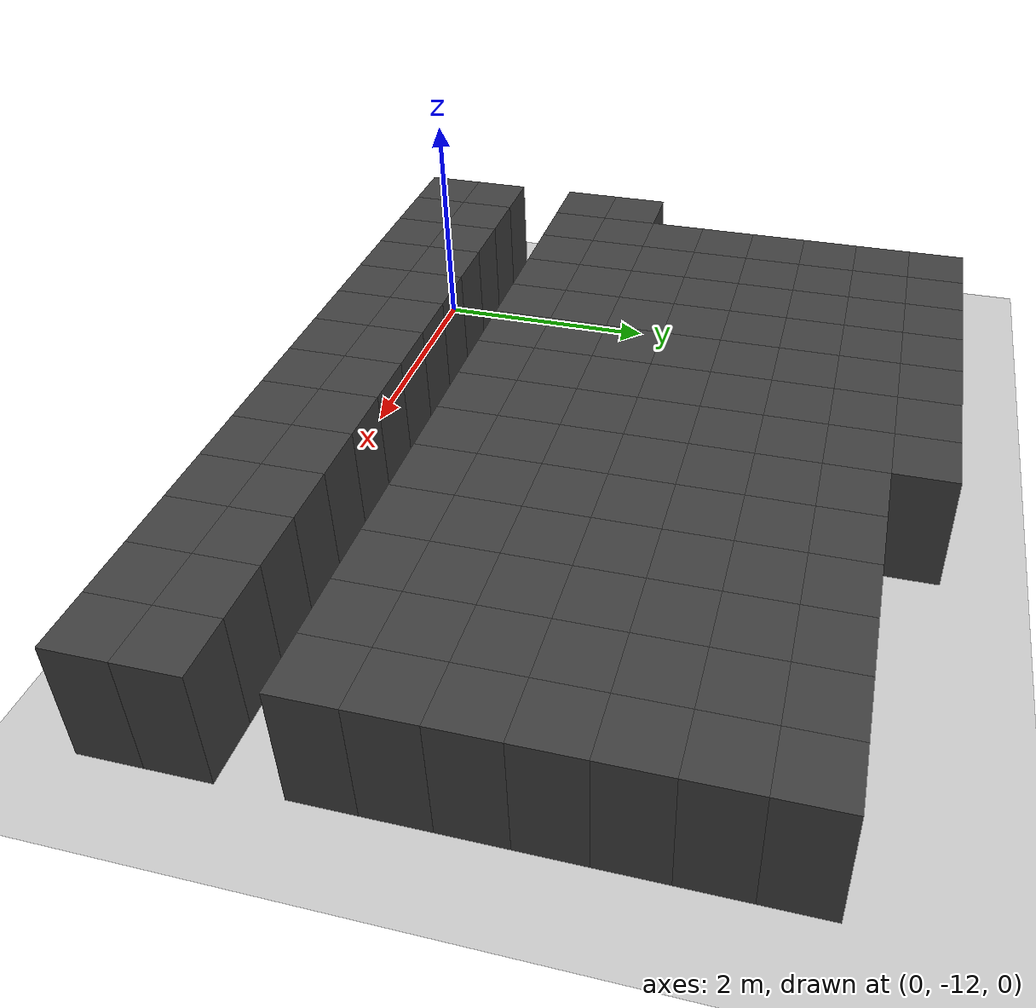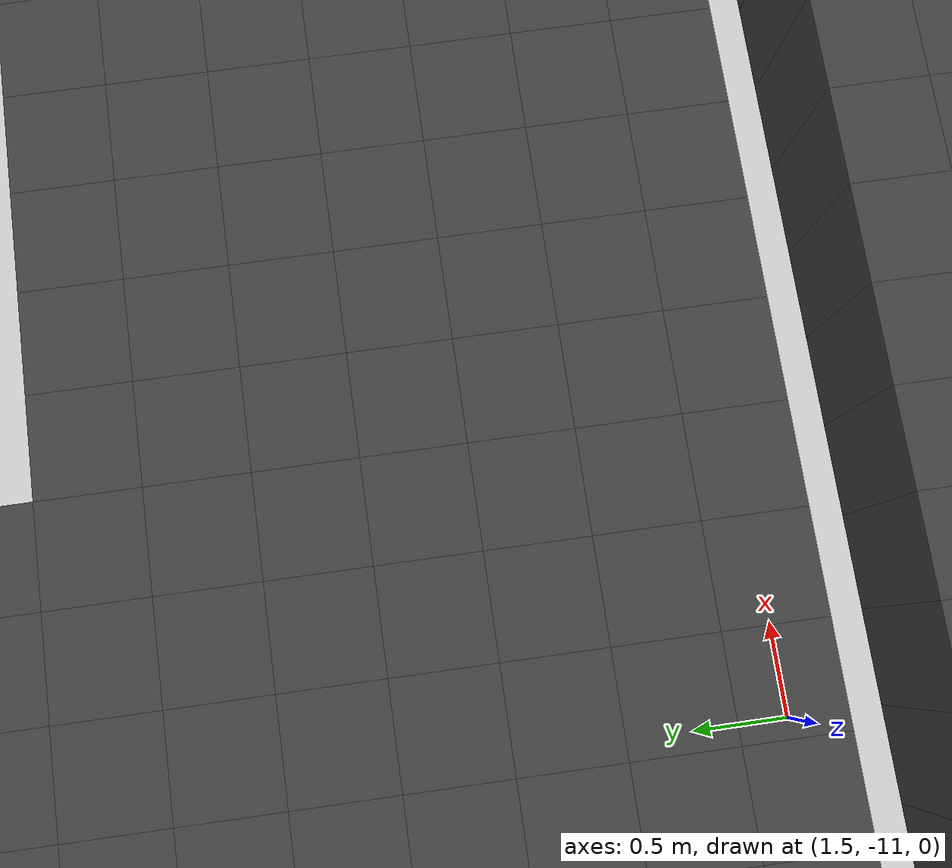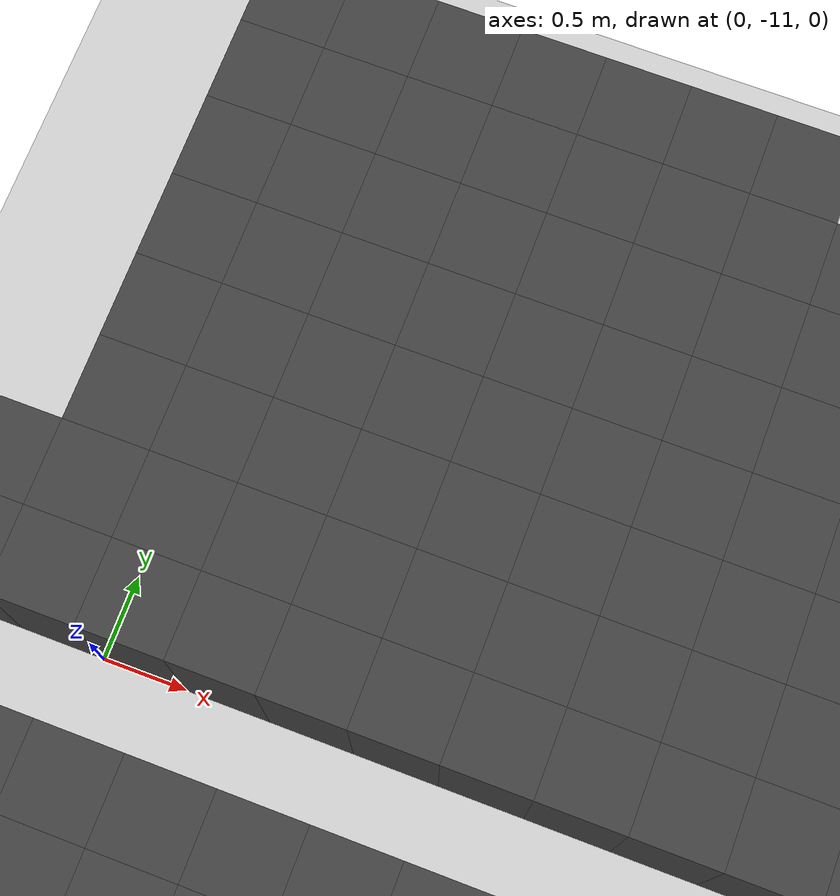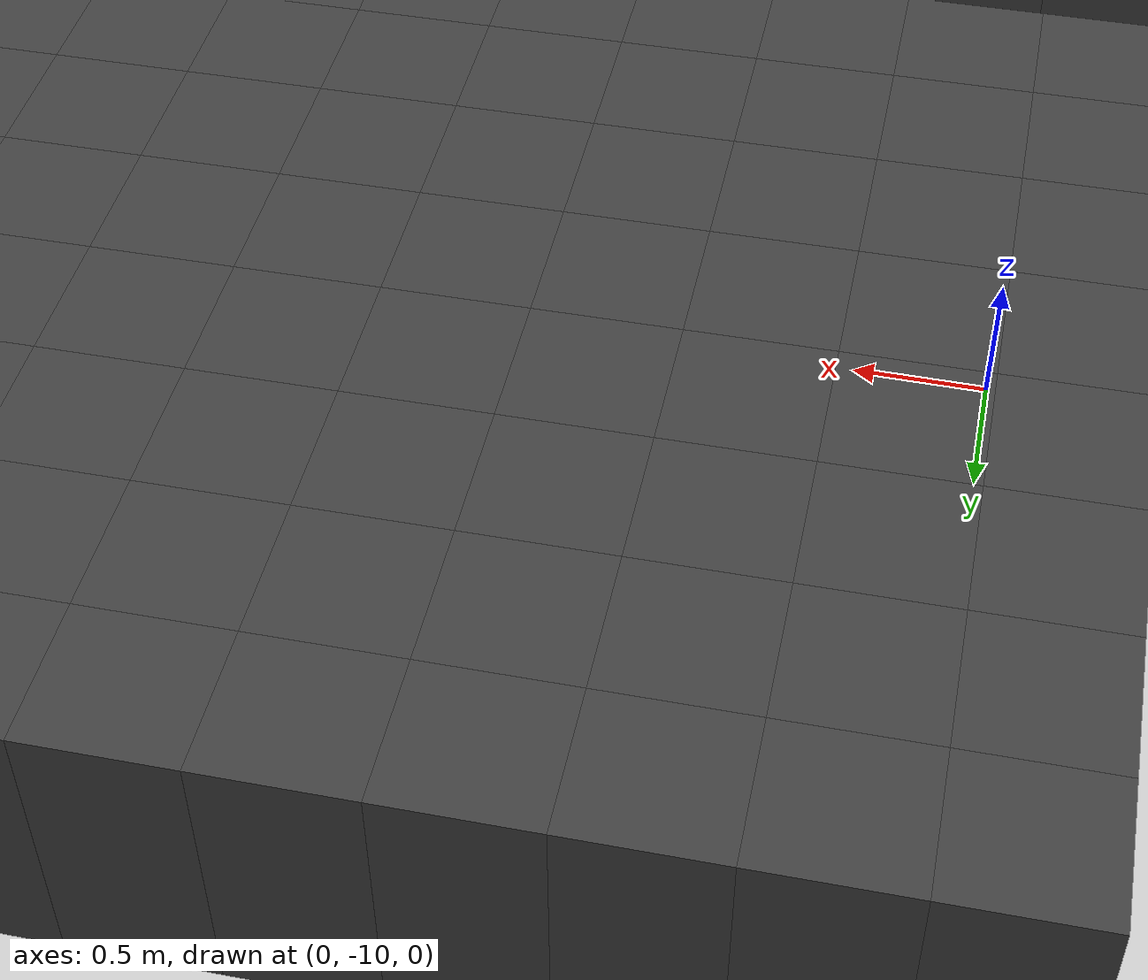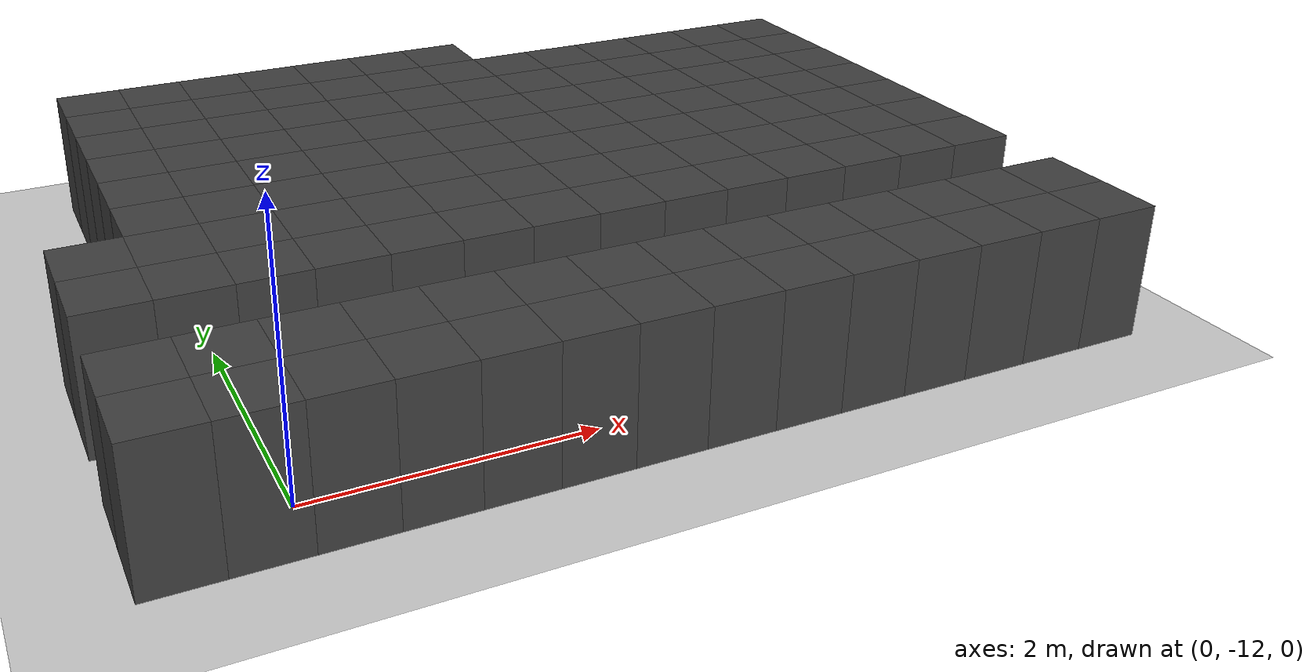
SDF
<sdf version="1.7">
 <world name="map_11515">
  <model name="ground_plane">
   <static>true</static>
   <link name="link">
    <collision name="collision">
     <geometry><plane><normal>0 0 1</normal><size>200 200</size></plane></geometry>
    </collision>
    <visual name="visual">
     <geometry><plane><normal>0 0 1</normal><size>200 200</size></plane></geometry>
     <material><ambient>0.8 0.8 0.8 1</ambient><diffuse>0.8 0.8 0.8 1</diffuse></material>
    </visual>
   </link>
  </model>
  <model name="maze_environment">
   <static>true</static>
   <link name="wall_1722">
    <pose>-0.250 -7.250 0.500 0 0 0</pose>
    <collision name="col"><geometry><box><size>0.5 0.5 1.0</size></box></geometry></collision>
    <visual name="vis">
     <geometry><box><size>0.5 0.5 1.0</size></box></geometry>
     <material><ambient>0.15 0.15 0.15 1</ambient><diffuse>0.25 0.25 0.25 1</diffuse></material>
    </visual>
   </link>
   <link name="wall_1723">
    <pose>0.250 -7.250 0.500 0 0 0</pose>
    <collision name="col"><geometry><box><size>0.5 0.5 1.0</size></box></geometry></collision>
    <visual name="vis">
     <geometry><box><size>0.5 0.5 1.0</size></box></geometry>
     <material><ambient>0.15 0.15 0.15 1</ambient><diffuse>0.25 0.25 0.25 1</diffuse></material>
    </visual>
   </link>
   <link name="wall_1724">
    <pose>0.750 -7.250 0.500 0 0 0</pose>
    <collision name="col"><geometry><box><size>0.5 0.5 1.0</size></box></geometry></collision>
    <visual name="vis">
     <geometry><box><size>0.5 0.5 1.0</size></box></geometry>
     <material><ambient>0.15 0.15 0.15 1</ambient><diffuse>0.25 0.25 0.25 1</diffuse></material>
    </visual>
   </link>
   <link name="wall_1725">
    <pose>1.250 -7.250 0.500 0 0 0</pose>
    <collision name="col"><geometry><box><size>0.5 0.5 1.0</size></box></geometry></collision>
    <visual name="vis">
     <geometry><box><size>0.5 0.5 1.0</size></box></geometry>
     <material><ambient>0.15 0.15 0.15 1</ambient><diffuse>0.25 0.25 0.25 1</diffuse></material>
    </visual>
   </link>
   <link name="wall_1726">
    <pose>1.750 -7.250 0.500 0 0 0</pose>
    <collision name="col"><geometry><box><size>0.5 0.5 1.0</size></box></geometry></collision>
    <visual name="vis">
     <geometry><box><size>0.5 0.5 1.0</size></box></geometry>
     <material><ambient>0.15 0.15 0.15 1</ambient><diffuse>0.25 0.25 0.25 1</diffuse></material>
    </visual>
   </link>
   <link name="wall_1727">
    <pose>2.250 -7.250 0.500 0 0 0</pose>
    <collision name="col"><geometry><box><size>0.5 0.5 1.0</size></box></geometry></collision>
    <visual name="vis">
     <geometry><box><size>0.5 0.5 1.0</size></box></geometry>
     <material><ambient>0.15 0.15 0.15 1</ambient><diffuse>0.25 0.25 0.25 1</diffuse></material>
    </visual>
   </link>
   <link name="wall_1728">
    <pose>2.750 -7.250 0.500 0 0 0</pose>
    <collision name="col"><geometry><box><size>0.5 0.5 1.0</size></box></geometry></collision>
    <visual name="vis">
     <geometry><box><size>0.5 0.5 1.0</size></box></geometry>
     <material><ambient>0.15 0.15 0.15 1</ambient><diffuse>0.25 0.25 0.25 1</diffuse></material>
    </visual>
   </link>
   <link name="wall_1771">
    <pose>-0.250 -7.750 0.500 0 0 0</pose>
    <collision name="col"><geometry><box><size>0.5 0.5 1.0</size></box></geometry></collision>
    <visual name="vis">
     <geometry><box><size>0.5 0.5 1.0</size></box></geometry>
     <material><ambient>0.15 0.15 0.15 1</ambient><diffuse>0.25 0.25 0.25 1</diffuse></material>
    </visual>
   </link>
   <link name="wall_1772">
    <pose>0.250 -7.750 0.500 0 0 0</pose>
    <collision name="col"><geometry><box><size>0.5 0.5 1.0</size></box></geometry></collision>
    <visual name="vis">
     <geometry><box><size>0.5 0.5 1.0</size></box></geometry>
     <material><ambient>0.15 0.15 0.15 1</ambient><diffuse>0.25 0.25 0.25 1</diffuse></material>
    </visual>
   </link>
   <link name="wall_1773">
    <pose>0.750 -7.750 0.500 0 0 0</pose>
    <collision name="col"><geometry><box><size>0.5 0.5 1.0</size></box></geometry></collision>
    <visual name="vis">
     <geometry><box><size>0.5 0.5 1.0</size></box></geometry>
     <material><ambient>0.15 0.15 0.15 1</ambient><diffuse>0.25 0.25 0.25 1</diffuse></material>
    </visual>
   </link>
   <link name="wall_1774">
    <pose>1.250 -7.750 0.500 0 0 0</pose>
    <collision name="col"><geometry><box><size>0.5 0.5 1.0</size></box></geometry></collision>
    <visual name="vis">
     <geometry><box><size>0.5 0.5 1.0</size></box></geometry>
     <material><ambient>0.15 0.15 0.15 1</ambient><diffuse>0.25 0.25 0.25 1</diffuse></material>
    </visual>
   </link>
   <link name="wall_1775">
    <pose>1.750 -7.750 0.500 0 0 0</pose>
    <collision name="col"><geometry><box><size>0.5 0.5 1.0</size></box></geometry></collision>
    <visual name="vis">
     <geometry><box><size>0.5 0.5 1.0</size></box></geometry>
     <material><ambient>0.15 0.15 0.15 1</ambient><diffuse>0.25 0.25 0.25 1</diffuse></material>
    </visual>
   </link>
   <link name="wall_1776">
    <pose>2.250 -7.750 0.500 0 0 0</pose>
    <collision name="col"><geometry><box><size>0.5 0.5 1.0</size></box></geometry></collision>
    <visual name="vis">
     <geometry><box><size>0.5 0.5 1.0</size></box></geometry>
     <material><ambient>0.15 0.15 0.15 1</ambient><diffuse>0.25 0.25 0.25 1</diffuse></material>
    </visual>
   </link>
   <link name="wall_1777">
    <pose>2.750 -7.750 0.500 0 0 0</pose>
    <collision name="col"><geometry><box><size>0.5 0.5 1.0</size></box></geometry></collision>
    <visual name="vis">
     <geometry><box><size>0.5 0.5 1.0</size></box></geometry>
     <material><ambient>0.15 0.15 0.15 1</ambient><diffuse>0.25 0.25 0.25 1</diffuse></material>
    </visual>
   </link>
   <link name="wall_1778">
    <pose>3.250 -7.750 0.500 0 0 0</pose>
    <collision name="col"><geometry><box><size>0.5 0.5 1.0</size></box></geometry></collision>
    <visual name="vis">
     <geometry><box><size>0.5 0.5 1.0</size></box></geometry>
     <material><ambient>0.15 0.15 0.15 1</ambient><diffuse>0.25 0.25 0.25 1</diffuse></material>
    </visual>
   </link>
   <link name="wall_1779">
    <pose>3.750 -7.750 0.500 0 0 0</pose>
    <collision name="col"><geometry><box><size>0.5 0.5 1.0</size></box></geometry></collision>
    <visual name="vis">
     <geometry><box><size>0.5 0.5 1.0</size></box></geometry>
     <material><ambient>0.15 0.15 0.15 1</ambient><diffuse>0.25 0.25 0.25 1</diffuse></material>
    </visual>
   </link>
   <link name="wall_1780">
    <pose>4.250 -7.750 0.500 0 0 0</pose>
    <collision name="col"><geometry><box><size>0.5 0.5 1.0</size></box></geometry></collision>
    <visual name="vis">
     <geometry><box><size>0.5 0.5 1.0</size></box></geometry>
     <material><ambient>0.15 0.15 0.15 1</ambient><diffuse>0.25 0.25 0.25 1</diffuse></material>
    </visual>
   </link>
   <link name="wall_1781">
    <pose>4.750 -7.750 0.500 0 0 0</pose>
    <collision name="col"><geometry><box><size>0.5 0.5 1.0</size></box></geometry></collision>
    <visual name="vis">
     <geometry><box><size>0.5 0.5 1.0</size></box></geometry>
     <material><ambient>0.15 0.15 0.15 1</ambient><diffuse>0.25 0.25 0.25 1</diffuse></material>
    </visual>
   </link>
   <link name="wall_1782">
    <pose>5.250 -7.750 0.500 0 0 0</pose>
    <collision name="col"><geometry><box><size>0.5 0.5 1.0</size></box></geometry></collision>
    <visual name="vis">
     <geometry><box><size>0.5 0.5 1.0</size></box></geometry>
     <material><ambient>0.15 0.15 0.15 1</ambient><diffuse>0.25 0.25 0.25 1</diffuse></material>
    </visual>
   </link>
   <link name="wall_1783">
    <pose>5.750 -7.750 0.500 0 0 0</pose>
    <collision name="col"><geometry><box><size>0.5 0.5 1.0</size></box></geometry></collision>
    <visual name="vis">
     <geometry><box><size>0.5 0.5 1.0</size></box></geometry>
     <material><ambient>0.15 0.15 0.15 1</ambient><diffuse>0.25 0.25 0.25 1</diffuse></material>
    </visual>
   </link>
   <link name="wall_1820">
    <pose>-0.250 -8.250 0.500 0 0 0</pose>
    <collision name="col"><geometry><box><size>0.5 0.5 1.0</size></box></geometry></collision>
    <visual name="vis">
     <geometry><box><size>0.5 0.5 1.0</size></box></geometry>
     <material><ambient>0.15 0.15 0.15 1</ambient><diffuse>0.25 0.25 0.25 1</diffuse></material>
    </visual>
   </link>
   <link name="wall_1821">
    <pose>0.250 -8.250 0.500 0 0 0</pose>
    <collision name="col"><geometry><box><size>0.5 0.5 1.0</size></box></geometry></collision>
    <visual name="vis">
     <geometry><box><size>0.5 0.5 1.0</size></box></geometry>
     <material><ambient>0.15 0.15 0.15 1</ambient><diffuse>0.25 0.25 0.25 1</diffuse></material>
    </visual>
   </link>
   <link name="wall_1822">
    <pose>0.750 -8.250 0.500 0 0 0</pose>
    <collision name="col"><geometry><box><size>0.5 0.5 1.0</size></box></geometry></collision>
    <visual name="vis">
     <geometry><box><size>0.5 0.5 1.0</size></box></geometry>
     <material><ambient>0.15 0.15 0.15 1</ambient><diffuse>0.25 0.25 0.25 1</diffuse></material>
    </visual>
   </link>
   <link name="wall_1823">
    <pose>1.250 -8.250 0.500 0 0 0</pose>
    <collision name="col"><geometry><box><size>0.5 0.5 1.0</size></box></geometry></collision>
    <visual name="vis">
     <geometry><box><size>0.5 0.5 1.0</size></box></geometry>
     <material><ambient>0.15 0.15 0.15 1</ambient><diffuse>0.25 0.25 0.25 1</diffuse></material>
    </visual>
   </link>
   <link name="wall_1824">
    <pose>1.750 -8.250 0.500 0 0 0</pose>
    <collision name="col"><geometry><box><size>0.5 0.5 1.0</size></box></geometry></collision>
    <visual name="vis">
     <geometry><box><size>0.5 0.5 1.0</size></box></geometry>
     <material><ambient>0.15 0.15 0.15 1</ambient><diffuse>0.25 0.25 0.25 1</diffuse></material>
    </visual>
   </link>
   <link name="wall_1825">
    <pose>2.250 -8.250 0.500 0 0 0</pose>
    <collision name="col"><geometry><box><size>0.5 0.5 1.0</size></box></geometry></collision>
    <visual name="vis">
     <geometry><box><size>0.5 0.5 1.0</size></box></geometry>
     <material><ambient>0.15 0.15 0.15 1</ambient><diffuse>0.25 0.25 0.25 1</diffuse></material>
    </visual>
   </link>
   <link name="wall_1826">
    <pose>2.750 -8.250 0.500 0 0 0</pose>
    <collision name="col"><geometry><box><size>0.5 0.5 1.0</size></box></geometry></collision>
    <visual name="vis">
     <geometry><box><size>0.5 0.5 1.0</size></box></geometry>
     <material><ambient>0.15 0.15 0.15 1</ambient><diffuse>0.25 0.25 0.25 1</diffuse></material>
    </visual>
   </link>
   <link name="wall_1827">
    <pose>3.250 -8.250 0.500 0 0 0</pose>
    <collision name="col"><geometry><box><size>0.5 0.5 1.0</size></box></geometry></collision>
    <visual name="vis">
     <geometry><box><size>0.5 0.5 1.0</size></box></geometry>
     <material><ambient>0.15 0.15 0.15 1</ambient><diffuse>0.25 0.25 0.25 1</diffuse></material>
    </visual>
   </link>
   <link name="wall_1828">
    <pose>3.750 -8.250 0.500 0 0 0</pose>
    <collision name="col"><geometry><box><size>0.5 0.5 1.0</size></box></geometry></collision>
    <visual name="vis">
     <geometry><box><size>0.5 0.5 1.0</size></box></geometry>
     <material><ambient>0.15 0.15 0.15 1</ambient><diffuse>0.25 0.25 0.25 1</diffuse></material>
    </visual>
   </link>
   <link name="wall_1829">
    <pose>4.250 -8.250 0.500 0 0 0</pose>
    <collision name="col"><geometry><box><size>0.5 0.5 1.0</size></box></geometry></collision>
    <visual name="vis">
     <geometry><box><size>0.5 0.5 1.0</size></box></geometry>
     <material><ambient>0.15 0.15 0.15 1</ambient><diffuse>0.25 0.25 0.25 1</diffuse></material>
    </visual>
   </link>
   <link name="wall_1830">
    <pose>4.750 -8.250 0.500 0 0 0</pose>
    <collision name="col"><geometry><box><size>0.5 0.5 1.0</size></box></geometry></collision>
    <visual name="vis">
     <geometry><box><size>0.5 0.5 1.0</size></box></geometry>
     <material><ambient>0.15 0.15 0.15 1</ambient><diffuse>0.25 0.25 0.25 1</diffuse></material>
    </visual>
   </link>
   <link name="wall_1831">
    <pose>5.250 -8.250 0.500 0 0 0</pose>
    <collision name="col"><geometry><box><size>0.5 0.5 1.0</size></box></geometry></collision>
    <visual name="vis">
     <geometry><box><size>0.5 0.5 1.0</size></box></geometry>
     <material><ambient>0.15 0.15 0.15 1</ambient><diffuse>0.25 0.25 0.25 1</diffuse></material>
    </visual>
   </link>
   <link name="wall_1832">
    <pose>5.750 -8.250 0.500 0 0 0</pose>
    <collision name="col"><geometry><box><size>0.5 0.5 1.0</size></box></geometry></collision>
    <visual name="vis">
     <geometry><box><size>0.5 0.5 1.0</size></box></geometry>
     <material><ambient>0.15 0.15 0.15 1</ambient><diffuse>0.25 0.25 0.25 1</diffuse></material>
    </visual>
   </link>
   <link name="wall_1863">
    <pose>-0.250 -8.750 0.500 0 0 0</pose>
    <collision name="col"><geometry><box><size>0.5 0.5 1.0</size></box></geometry></collision>
    <visual name="vis">
     <geometry><box><size>0.5 0.5 1.0</size></box></geometry>
     <material><ambient>0.15 0.15 0.15 1</ambient><diffuse>0.25 0.25 0.25 1</diffuse></material>
    </visual>
   </link>
   <link name="wall_1864">
    <pose>0.250 -8.750 0.500 0 0 0</pose>
    <collision name="col"><geometry><box><size>0.5 0.5 1.0</size></box></geometry></collision>
    <visual name="vis">
     <geometry><box><size>0.5 0.5 1.0</size></box></geometry>
     <material><ambient>0.15 0.15 0.15 1</ambient><diffuse>0.25 0.25 0.25 1</diffuse></material>
    </visual>
   </link>
   <link name="wall_1865">
    <pose>0.750 -8.750 0.500 0 0 0</pose>
    <collision name="col"><geometry><box><size>0.5 0.5 1.0</size></box></geometry></collision>
    <visual name="vis">
     <geometry><box><size>0.5 0.5 1.0</size></box></geometry>
     <material><ambient>0.15 0.15 0.15 1</ambient><diffuse>0.25 0.25 0.25 1</diffuse></material>
    </visual>
   </link>
   <link name="wall_1866">
    <pose>1.250 -8.750 0.500 0 0 0</pose>
    <collision name="col"><geometry><box><size>0.5 0.5 1.0</size></box></geometry></collision>
    <visual name="vis">
     <geometry><box><size>0.5 0.5 1.0</size></box></geometry>
     <material><ambient>0.15 0.15 0.15 1</ambient><diffuse>0.25 0.25 0.25 1</diffuse></material>
    </visual>
   </link>
   <link name="wall_1867">
    <pose>1.750 -8.750 0.500 0 0 0</pose>
    <collision name="col"><geometry><box><size>0.5 0.5 1.0</size></box></geometry></collision>
    <visual name="vis">
     <geometry><box><size>0.5 0.5 1.0</size></box></geometry>
     <material><ambient>0.15 0.15 0.15 1</ambient><diffuse>0.25 0.25 0.25 1</diffuse></material>
    </visual>
   </link>
   <link name="wall_1868">
    <pose>2.250 -8.750 0.500 0 0 0</pose>
    <collision name="col"><geometry><box><size>0.5 0.5 1.0</size></box></geometry></collision>
    <visual name="vis">
     <geometry><box><size>0.5 0.5 1.0</size></box></geometry>
     <material><ambient>0.15 0.15 0.15 1</ambient><diffuse>0.25 0.25 0.25 1</diffuse></material>
    </visual>
   </link>
   <link name="wall_1869">
    <pose>2.750 -8.750 0.500 0 0 0</pose>
    <collision name="col"><geometry><box><size>0.5 0.5 1.0</size></box></geometry></collision>
    <visual name="vis">
     <geometry><box><size>0.5 0.5 1.0</size></box></geometry>
     <material><ambient>0.15 0.15 0.15 1</ambient><diffuse>0.25 0.25 0.25 1</diffuse></material>
    </visual>
   </link>
   <link name="wall_1870">
    <pose>3.250 -8.750 0.500 0 0 0</pose>
    <collision name="col"><geometry><box><size>0.5 0.5 1.0</size></box></geometry></collision>
    <visual name="vis">
     <geometry><box><size>0.5 0.5 1.0</size></box></geometry>
     <material><ambient>0.15 0.15 0.15 1</ambient><diffuse>0.25 0.25 0.25 1</diffuse></material>
    </visual>
   </link>
   <link name="wall_1871">
    <pose>3.750 -8.750 0.500 0 0 0</pose>
    <collision name="col"><geometry><box><size>0.5 0.5 1.0</size></box></geometry></collision>
    <visual name="vis">
     <geometry><box><size>0.5 0.5 1.0</size></box></geometry>
     <material><ambient>0.15 0.15 0.15 1</ambient><diffuse>0.25 0.25 0.25 1</diffuse></material>
    </visual>
   </link>
   <link name="wall_1872">
    <pose>4.250 -8.750 0.500 0 0 0</pose>
    <collision name="col"><geometry><box><size>0.5 0.5 1.0</size></box></geometry></collision>
    <visual name="vis">
     <geometry><box><size>0.5 0.5 1.0</size></box></geometry>
     <material><ambient>0.15 0.15 0.15 1</ambient><diffuse>0.25 0.25 0.25 1</diffuse></material>
    </visual>
   </link>
   <link name="wall_1873">
    <pose>4.750 -8.750 0.500 0 0 0</pose>
    <collision name="col"><geometry><box><size>0.5 0.5 1.0</size></box></geometry></collision>
    <visual name="vis">
     <geometry><box><size>0.5 0.5 1.0</size></box></geometry>
     <material><ambient>0.15 0.15 0.15 1</ambient><diffuse>0.25 0.25 0.25 1</diffuse></material>
    </visual>
   </link>
   <link name="wall_1874">
    <pose>5.250 -8.750 0.500 0 0 0</pose>
    <collision name="col"><geometry><box><size>0.5 0.5 1.0</size></box></geometry></collision>
    <visual name="vis">
     <geometry><box><size>0.5 0.5 1.0</size></box></geometry>
     <material><ambient>0.15 0.15 0.15 1</ambient><diffuse>0.25 0.25 0.25 1</diffuse></material>
    </visual>
   </link>
   <link name="wall_1875">
    <pose>5.750 -8.750 0.500 0 0 0</pose>
    <collision name="col"><geometry><box><size>0.5 0.5 1.0</size></box></geometry></collision>
    <visual name="vis">
     <geometry><box><size>0.5 0.5 1.0</size></box></geometry>
     <material><ambient>0.15 0.15 0.15 1</ambient><diffuse>0.25 0.25 0.25 1</diffuse></material>
    </visual>
   </link>
   <link name="wall_1906">
    <pose>-0.250 -9.250 0.500 0 0 0</pose>
    <collision name="col"><geometry><box><size>0.5 0.5 1.0</size></box></geometry></collision>
    <visual name="vis">
     <geometry><box><size>0.5 0.5 1.0</size></box></geometry>
     <material><ambient>0.15 0.15 0.15 1</ambient><diffuse>0.25 0.25 0.25 1</diffuse></material>
    </visual>
   </link>
   <link name="wall_1907">
    <pose>0.250 -9.250 0.500 0 0 0</pose>
    <collision name="col"><geometry><box><size>0.5 0.5 1.0</size></box></geometry></collision>
    <visual name="vis">
     <geometry><box><size>0.5 0.5 1.0</size></box></geometry>
     <material><ambient>0.15 0.15 0.15 1</ambient><diffuse>0.25 0.25 0.25 1</diffuse></material>
    </visual>
   </link>
   <link name="wall_1908">
    <pose>0.750 -9.250 0.500 0 0 0</pose>
    <collision name="col"><geometry><box><size>0.5 0.5 1.0</size></box></geometry></collision>
    <visual name="vis">
     <geometry><box><size>0.5 0.5 1.0</size></box></geometry>
     <material><ambient>0.15 0.15 0.15 1</ambient><diffuse>0.25 0.25 0.25 1</diffuse></material>
    </visual>
   </link>
   <link name="wall_1909">
    <pose>1.250 -9.250 0.500 0 0 0</pose>
    <collision name="col"><geometry><box><size>0.5 0.5 1.0</size></box></geometry></collision>
    <visual name="vis">
     <geometry><box><size>0.5 0.5 1.0</size></box></geometry>
     <material><ambient>0.15 0.15 0.15 1</ambient><diffuse>0.25 0.25 0.25 1</diffuse></material>
    </visual>
   </link>
   <link name="wall_1910">
    <pose>1.750 -9.250 0.500 0 0 0</pose>
    <collision name="col"><geometry><box><size>0.5 0.5 1.0</size></box></geometry></collision>
    <visual name="vis">
     <geometry><box><size>0.5 0.5 1.0</size></box></geometry>
     <material><ambient>0.15 0.15 0.15 1</ambient><diffuse>0.25 0.25 0.25 1</diffuse></material>
    </visual>
   </link>
   <link name="wall_1911">
    <pose>2.250 -9.250 0.500 0 0 0</pose>
    <collision name="col"><geometry><box><size>0.5 0.5 1.0</size></box></geometry></collision>
    <visual name="vis">
     <geometry><box><size>0.5 0.5 1.0</size></box></geometry>
     <material><ambient>0.15 0.15 0.15 1</ambient><diffuse>0.25 0.25 0.25 1</diffuse></material>
    </visual>
   </link>
   <link name="wall_1912">
    <pose>2.750 -9.250 0.500 0 0 0</pose>
    <collision name="col"><geometry><box><size>0.5 0.5 1.0</size></box></geometry></collision>
    <visual name="vis">
     <geometry><box><size>0.5 0.5 1.0</size></box></geometry>
     <material><ambient>0.15 0.15 0.15 1</ambient><diffuse>0.25 0.25 0.25 1</diffuse></material>
    </visual>
   </link>
   <link name="wall_1913">
    <pose>3.250 -9.250 0.500 0 0 0</pose>
    <collision name="col"><geometry><box><size>0.5 0.5 1.0</size></box></geometry></collision>
    <visual name="vis">
     <geometry><box><size>0.5 0.5 1.0</size></box></geometry>
     <material><ambient>0.15 0.15 0.15 1</ambient><diffuse>0.25 0.25 0.25 1</diffuse></material>
    </visual>
   </link>
   <link name="wall_1914">
    <pose>3.750 -9.250 0.500 0 0 0</pose>
    <collision name="col"><geometry><box><size>0.5 0.5 1.0</size></box></geometry></collision>
    <visual name="vis">
     <geometry><box><size>0.5 0.5 1.0</size></box></geometry>
     <material><ambient>0.15 0.15 0.15 1</ambient><diffuse>0.25 0.25 0.25 1</diffuse></material>
    </visual>
   </link>
   <link name="wall_1915">
    <pose>4.250 -9.250 0.500 0 0 0</pose>
    <collision name="col"><geometry><box><size>0.5 0.5 1.0</size></box></geometry></collision>
    <visual name="vis">
     <geometry><box><size>0.5 0.5 1.0</size></box></geometry>
     <material><ambient>0.15 0.15 0.15 1</ambient><diffuse>0.25 0.25 0.25 1</diffuse></material>
    </visual>
   </link>
   <link name="wall_1916">
    <pose>4.750 -9.250 0.500 0 0 0</pose>
    <collision name="col"><geometry><box><size>0.5 0.5 1.0</size></box></geometry></collision>
    <visual name="vis">
     <geometry><box><size>0.5 0.5 1.0</size></box></geometry>
     <material><ambient>0.15 0.15 0.15 1</ambient><diffuse>0.25 0.25 0.25 1</diffuse></material>
    </visual>
   </link>
   <link name="wall_1917">
    <pose>5.250 -9.250 0.500 0 0 0</pose>
    <collision name="col"><geometry><box><size>0.5 0.5 1.0</size></box></geometry></collision>
    <visual name="vis">
     <geometry><box><size>0.5 0.5 1.0</size></box></geometry>
     <material><ambient>0.15 0.15 0.15 1</ambient><diffuse>0.25 0.25 0.25 1</diffuse></material>
    </visual>
   </link>
   <link name="wall_1918">
    <pose>5.750 -9.250 0.500 0 0 0</pose>
    <collision name="col"><geometry><box><size>0.5 0.5 1.0</size></box></geometry></collision>
    <visual name="vis">
     <geometry><box><size>0.5 0.5 1.0</size></box></geometry>
     <material><ambient>0.15 0.15 0.15 1</ambient><diffuse>0.25 0.25 0.25 1</diffuse></material>
    </visual>
   </link>
   <link name="wall_1948">
    <pose>-0.250 -9.750 0.500 0 0 0</pose>
    <collision name="col"><geometry><box><size>0.5 0.5 1.0</size></box></geometry></collision>
    <visual name="vis">
     <geometry><box><size>0.5 0.5 1.0</size></box></geometry>
     <material><ambient>0.15 0.15 0.15 1</ambient><diffuse>0.25 0.25 0.25 1</diffuse></material>
    </visual>
   </link>
   <link name="wall_1949">
    <pose>0.250 -9.750 0.500 0 0 0</pose>
    <collision name="col"><geometry><box><size>0.5 0.5 1.0</size></box></geometry></collision>
    <visual name="vis">
     <geometry><box><size>0.5 0.5 1.0</size></box></geometry>
     <material><ambient>0.15 0.15 0.15 1</ambient><diffuse>0.25 0.25 0.25 1</diffuse></material>
    </visual>
   </link>
   <link name="wall_1950">
    <pose>0.750 -9.750 0.500 0 0 0</pose>
    <collision name="col"><geometry><box><size>0.5 0.5 1.0</size></box></geometry></collision>
    <visual name="vis">
     <geometry><box><size>0.5 0.5 1.0</size></box></geometry>
     <material><ambient>0.15 0.15 0.15 1</ambient><diffuse>0.25 0.25 0.25 1</diffuse></material>
    </visual>
   </link>
   <link name="wall_1951">
    <pose>1.250 -9.750 0.500 0 0 0</pose>
    <collision name="col"><geometry><box><size>0.5 0.5 1.0</size></box></geometry></collision>
    <visual name="vis">
     <geometry><box><size>0.5 0.5 1.0</size></box></geometry>
     <material><ambient>0.15 0.15 0.15 1</ambient><diffuse>0.25 0.25 0.25 1</diffuse></material>
    </visual>
   </link>
   <link name="wall_1952">
    <pose>1.750 -9.750 0.500 0 0 0</pose>
    <collision name="col"><geometry><box><size>0.5 0.5 1.0</size></box></geometry></collision>
    <visual name="vis">
     <geometry><box><size>0.5 0.5 1.0</size></box></geometry>
     <material><ambient>0.15 0.15 0.15 1</ambient><diffuse>0.25 0.25 0.25 1</diffuse></material>
    </visual>
   </link>
   <link name="wall_1953">
    <pose>2.250 -9.750 0.500 0 0 0</pose>
    <collision name="col"><geometry><box><size>0.5 0.5 1.0</size></box></geometry></collision>
    <visual name="vis">
     <geometry><box><size>0.5 0.5 1.0</size></box></geometry>
     <material><ambient>0.15 0.15 0.15 1</ambient><diffuse>0.25 0.25 0.25 1</diffuse></material>
    </visual>
   </link>
   <link name="wall_1954">
    <pose>2.750 -9.750 0.500 0 0 0</pose>
    <collision name="col"><geometry><box><size>0.5 0.5 1.0</size></box></geometry></collision>
    <visual name="vis">
     <geometry><box><size>0.5 0.5 1.0</size></box></geometry>
     <material><ambient>0.15 0.15 0.15 1</ambient><diffuse>0.25 0.25 0.25 1</diffuse></material>
    </visual>
   </link>
   <link name="wall_1955">
    <pose>3.250 -9.750 0.500 0 0 0</pose>
    <collision name="col"><geometry><box><size>0.5 0.5 1.0</size></box></geometry></collision>
    <visual name="vis">
     <geometry><box><size>0.5 0.5 1.0</size></box></geometry>
     <material><ambient>0.15 0.15 0.15 1</ambient><diffuse>0.25 0.25 0.25 1</diffuse></material>
    </visual>
   </link>
   <link name="wall_1956">
    <pose>3.750 -9.750 0.500 0 0 0</pose>
    <collision name="col"><geometry><box><size>0.5 0.5 1.0</size></box></geometry></collision>
    <visual name="vis">
     <geometry><box><size>0.5 0.5 1.0</size></box></geometry>
     <material><ambient>0.15 0.15 0.15 1</ambient><diffuse>0.25 0.25 0.25 1</diffuse></material>
    </visual>
   </link>
   <link name="wall_1957">
    <pose>4.250 -9.750 0.500 0 0 0</pose>
    <collision name="col"><geometry><box><size>0.5 0.5 1.0</size></box></geometry></collision>
    <visual name="vis">
     <geometry><box><size>0.5 0.5 1.0</size></box></geometry>
     <material><ambient>0.15 0.15 0.15 1</ambient><diffuse>0.25 0.25 0.25 1</diffuse></material>
    </visual>
   </link>
   <link name="wall_1958">
    <pose>4.750 -9.750 0.500 0 0 0</pose>
    <collision name="col"><geometry><box><size>0.5 0.5 1.0</size></box></geometry></collision>
    <visual name="vis">
     <geometry><box><size>0.5 0.5 1.0</size></box></geometry>
     <material><ambient>0.15 0.15 0.15 1</ambient><diffuse>0.25 0.25 0.25 1</diffuse></material>
    </visual>
   </link>
   <link name="wall_1959">
    <pose>5.250 -9.750 0.500 0 0 0</pose>
    <collision name="col"><geometry><box><size>0.5 0.5 1.0</size></box></geometry></collision>
    <visual name="vis">
     <geometry><box><size>0.5 0.5 1.0</size></box></geometry>
     <material><ambient>0.15 0.15 0.15 1</ambient><diffuse>0.25 0.25 0.25 1</diffuse></material>
    </visual>
   </link>
   <link name="wall_1960">
    <pose>5.750 -9.750 0.500 0 0 0</pose>
    <collision name="col"><geometry><box><size>0.5 0.5 1.0</size></box></geometry></collision>
    <visual name="vis">
     <geometry><box><size>0.5 0.5 1.0</size></box></geometry>
     <material><ambient>0.15 0.15 0.15 1</ambient><diffuse>0.25 0.25 0.25 1</diffuse></material>
    </visual>
   </link>
   <link name="wall_1991">
    <pose>-0.750 -10.250 0.500 0 0 0</pose>
    <collision name="col"><geometry><box><size>0.5 0.5 1.0</size></box></geometry></collision>
    <visual name="vis">
     <geometry><box><size>0.5 0.5 1.0</size></box></geometry>
     <material><ambient>0.15 0.15 0.15 1</ambient><diffuse>0.25 0.25 0.25 1</diffuse></material>
    </visual>
   </link>
   <link name="wall_1992">
    <pose>-0.250 -10.250 0.500 0 0 0</pose>
    <collision name="col"><geometry><box><size>0.5 0.5 1.0</size></box></geometry></collision>
    <visual name="vis">
     <geometry><box><size>0.5 0.5 1.0</size></box></geometry>
     <material><ambient>0.15 0.15 0.15 1</ambient><diffuse>0.25 0.25 0.25 1</diffuse></material>
    </visual>
   </link>
   <link name="wall_1993">
    <pose>0.250 -10.250 0.500 0 0 0</pose>
    <collision name="col"><geometry><box><size>0.5 0.5 1.0</size></box></geometry></collision>
    <visual name="vis">
     <geometry><box><size>0.5 0.5 1.0</size></box></geometry>
     <material><ambient>0.15 0.15 0.15 1</ambient><diffuse>0.25 0.25 0.25 1</diffuse></material>
    </visual>
   </link>
   <link name="wall_1994">
    <pose>0.750 -10.250 0.500 0 0 0</pose>
    <collision name="col"><geometry><box><size>0.5 0.5 1.0</size></box></geometry></collision>
    <visual name="vis">
     <geometry><box><size>0.5 0.5 1.0</size></box></geometry>
     <material><ambient>0.15 0.15 0.15 1</ambient><diffuse>0.25 0.25 0.25 1</diffuse></material>
    </visual>
   </link>
   <link name="wall_1995">
    <pose>1.250 -10.250 0.500 0 0 0</pose>
    <collision name="col"><geometry><box><size>0.5 0.5 1.0</size></box></geometry></collision>
    <visual name="vis">
     <geometry><box><size>0.5 0.5 1.0</size></box></geometry>
     <material><ambient>0.15 0.15 0.15 1</ambient><diffuse>0.25 0.25 0.25 1</diffuse></material>
    </visual>
   </link>
   <link name="wall_1996">
    <pose>1.750 -10.250 0.500 0 0 0</pose>
    <collision name="col"><geometry><box><size>0.5 0.5 1.0</size></box></geometry></collision>
    <visual name="vis">
     <geometry><box><size>0.5 0.5 1.0</size></box></geometry>
     <material><ambient>0.15 0.15 0.15 1</ambient><diffuse>0.25 0.25 0.25 1</diffuse></material>
    </visual>
   </link>
   <link name="wall_1997">
    <pose>2.250 -10.250 0.500 0 0 0</pose>
    <collision name="col"><geometry><box><size>0.5 0.5 1.0</size></box></geometry></collision>
    <visual name="vis">
     <geometry><box><size>0.5 0.5 1.0</size></box></geometry>
     <material><ambient>0.15 0.15 0.15 1</ambient><diffuse>0.25 0.25 0.25 1</diffuse></material>
    </visual>
   </link>
   <link name="wall_1998">
    <pose>2.750 -10.250 0.500 0 0 0</pose>
    <collision name="col"><geometry><box><size>0.5 0.5 1.0</size></box></geometry></collision>
    <visual name="vis">
     <geometry><box><size>0.5 0.5 1.0</size></box></geometry>
     <material><ambient>0.15 0.15 0.15 1</ambient><diffuse>0.25 0.25 0.25 1</diffuse></material>
    </visual>
   </link>
   <link name="wall_1999">
    <pose>3.250 -10.250 0.500 0 0 0</pose>
    <collision name="col"><geometry><box><size>0.5 0.5 1.0</size></box></geometry></collision>
    <visual name="vis">
     <geometry><box><size>0.5 0.5 1.0</size></box></geometry>
     <material><ambient>0.15 0.15 0.15 1</ambient><diffuse>0.25 0.25 0.25 1</diffuse></material>
    </visual>
   </link>
   <link name="wall_2000">
    <pose>3.750 -10.250 0.500 0 0 0</pose>
    <collision name="col"><geometry><box><size>0.5 0.5 1.0</size></box></geometry></collision>
    <visual name="vis">
     <geometry><box><size>0.5 0.5 1.0</size></box></geometry>
     <material><ambient>0.15 0.15 0.15 1</ambient><diffuse>0.25 0.25 0.25 1</diffuse></material>
    </visual>
   </link>
   <link name="wall_2001">
    <pose>4.250 -10.250 0.500 0 0 0</pose>
    <collision name="col"><geometry><box><size>0.5 0.5 1.0</size></box></geometry></collision>
    <visual name="vis">
     <geometry><box><size>0.5 0.5 1.0</size></box></geometry>
     <material><ambient>0.15 0.15 0.15 1</ambient><diffuse>0.25 0.25 0.25 1</diffuse></material>
    </visual>
   </link>
   <link name="wall_2002">
    <pose>4.750 -10.250 0.500 0 0 0</pose>
    <collision name="col"><geometry><box><size>0.5 0.5 1.0</size></box></geometry></collision>
    <visual name="vis">
     <geometry><box><size>0.5 0.5 1.0</size></box></geometry>
     <material><ambient>0.15 0.15 0.15 1</ambient><diffuse>0.25 0.25 0.25 1</diffuse></material>
    </visual>
   </link>
   <link name="wall_2003">
    <pose>5.250 -10.250 0.500 0 0 0</pose>
    <collision name="col"><geometry><box><size>0.5 0.5 1.0</size></box></geometry></collision>
    <visual name="vis">
     <geometry><box><size>0.5 0.5 1.0</size></box></geometry>
     <material><ambient>0.15 0.15 0.15 1</ambient><diffuse>0.25 0.25 0.25 1</diffuse></material>
    </visual>
   </link>
   <link name="wall_2004">
    <pose>5.750 -10.250 0.500 0 0 0</pose>
    <collision name="col"><geometry><box><size>0.5 0.5 1.0</size></box></geometry></collision>
    <visual name="vis">
     <geometry><box><size>0.5 0.5 1.0</size></box></geometry>
     <material><ambient>0.15 0.15 0.15 1</ambient><diffuse>0.25 0.25 0.25 1</diffuse></material>
    </visual>
   </link>
   <link name="wall_2035">
    <pose>-0.750 -10.750 0.500 0 0 0</pose>
    <collision name="col"><geometry><box><size>0.5 0.5 1.0</size></box></geometry></collision>
    <visual name="vis">
     <geometry><box><size>0.5 0.5 1.0</size></box></geometry>
     <material><ambient>0.15 0.15 0.15 1</ambient><diffuse>0.25 0.25 0.25 1</diffuse></material>
    </visual>
   </link>
   <link name="wall_2036">
    <pose>-0.250 -10.750 0.500 0 0 0</pose>
    <collision name="col"><geometry><box><size>0.5 0.5 1.0</size></box></geometry></collision>
    <visual name="vis">
     <geometry><box><size>0.5 0.5 1.0</size></box></geometry>
     <material><ambient>0.15 0.15 0.15 1</ambient><diffuse>0.25 0.25 0.25 1</diffuse></material>
    </visual>
   </link>
   <link name="wall_2037">
    <pose>0.250 -10.750 0.500 0 0 0</pose>
    <collision name="col"><geometry><box><size>0.5 0.5 1.0</size></box></geometry></collision>
    <visual name="vis">
     <geometry><box><size>0.5 0.5 1.0</size></box></geometry>
     <material><ambient>0.15 0.15 0.15 1</ambient><diffuse>0.25 0.25 0.25 1</diffuse></material>
    </visual>
   </link>
   <link name="wall_2038">
    <pose>0.750 -10.750 0.500 0 0 0</pose>
    <collision name="col"><geometry><box><size>0.5 0.5 1.0</size></box></geometry></collision>
    <visual name="vis">
     <geometry><box><size>0.5 0.5 1.0</size></box></geometry>
     <material><ambient>0.15 0.15 0.15 1</ambient><diffuse>0.25 0.25 0.25 1</diffuse></material>
    </visual>
   </link>
   <link name="wall_2039">
    <pose>1.250 -10.750 0.500 0 0 0</pose>
    <collision name="col"><geometry><box><size>0.5 0.5 1.0</size></box></geometry></collision>
    <visual name="vis">
     <geometry><box><size>0.5 0.5 1.0</size></box></geometry>
     <material><ambient>0.15 0.15 0.15 1</ambient><diffuse>0.25 0.25 0.25 1</diffuse></material>
    </visual>
   </link>
   <link name="wall_2040">
    <pose>1.750 -10.750 0.500 0 0 0</pose>
    <collision name="col"><geometry><box><size>0.5 0.5 1.0</size></box></geometry></collision>
    <visual name="vis">
     <geometry><box><size>0.5 0.5 1.0</size></box></geometry>
     <material><ambient>0.15 0.15 0.15 1</ambient><diffuse>0.25 0.25 0.25 1</diffuse></material>
    </visual>
   </link>
   <link name="wall_2041">
    <pose>2.250 -10.750 0.500 0 0 0</pose>
    <collision name="col"><geometry><box><size>0.5 0.5 1.0</size></box></geometry></collision>
    <visual name="vis">
     <geometry><box><size>0.5 0.5 1.0</size></box></geometry>
     <material><ambient>0.15 0.15 0.15 1</ambient><diffuse>0.25 0.25 0.25 1</diffuse></material>
    </visual>
   </link>
   <link name="wall_2042">
    <pose>2.750 -10.750 0.500 0 0 0</pose>
    <collision name="col"><geometry><box><size>0.5 0.5 1.0</size></box></geometry></collision>
    <visual name="vis">
     <geometry><box><size>0.5 0.5 1.0</size></box></geometry>
     <material><ambient>0.15 0.15 0.15 1</ambient><diffuse>0.25 0.25 0.25 1</diffuse></material>
    </visual>
   </link>
   <link name="wall_2043">
    <pose>3.250 -10.750 0.500 0 0 0</pose>
    <collision name="col"><geometry><box><size>0.5 0.5 1.0</size></box></geometry></collision>
    <visual name="vis">
     <geometry><box><size>0.5 0.5 1.0</size></box></geometry>
     <material><ambient>0.15 0.15 0.15 1</ambient><diffuse>0.25 0.25 0.25 1</diffuse></material>
    </visual>
   </link>
   <link name="wall_2044">
    <pose>3.750 -10.750 0.500 0 0 0</pose>
    <collision name="col"><geometry><box><size>0.5 0.5 1.0</size></box></geometry></collision>
    <visual name="vis">
     <geometry><box><size>0.5 0.5 1.0</size></box></geometry>
     <material><ambient>0.15 0.15 0.15 1</ambient><diffuse>0.25 0.25 0.25 1</diffuse></material>
    </visual>
   </link>
   <link name="wall_2045">
    <pose>4.250 -10.750 0.500 0 0 0</pose>
    <collision name="col"><geometry><box><size>0.5 0.5 1.0</size></box></geometry></collision>
    <visual name="vis">
     <geometry><box><size>0.5 0.5 1.0</size></box></geometry>
     <material><ambient>0.15 0.15 0.15 1</ambient><diffuse>0.25 0.25 0.25 1</diffuse></material>
    </visual>
   </link>
   <link name="wall_2046">
    <pose>4.750 -10.750 0.500 0 0 0</pose>
    <collision name="col"><geometry><box><size>0.5 0.5 1.0</size></box></geometry></collision>
    <visual name="vis">
     <geometry><box><size>0.5 0.5 1.0</size></box></geometry>
     <material><ambient>0.15 0.15 0.15 1</ambient><diffuse>0.25 0.25 0.25 1</diffuse></material>
    </visual>
   </link>
   <link name="wall_2047">
    <pose>5.250 -10.750 0.500 0 0 0</pose>
    <collision name="col"><geometry><box><size>0.5 0.5 1.0</size></box></geometry></collision>
    <visual name="vis">
     <geometry><box><size>0.5 0.5 1.0</size></box></geometry>
     <material><ambient>0.15 0.15 0.15 1</ambient><diffuse>0.25 0.25 0.25 1</diffuse></material>
    </visual>
   </link>
   <link name="wall_2048">
    <pose>5.750 -10.750 0.500 0 0 0</pose>
    <collision name="col"><geometry><box><size>0.5 0.5 1.0</size></box></geometry></collision>
    <visual name="vis">
     <geometry><box><size>0.5 0.5 1.0</size></box></geometry>
     <material><ambient>0.15 0.15 0.15 1</ambient><diffuse>0.25 0.25 0.25 1</diffuse></material>
    </visual>
   </link>
   <link name="wall_2102">
    <pose>-0.750 -11.750 0.500 0 0 0</pose>
    <collision name="col"><geometry><box><size>0.5 0.5 1.0</size></box></geometry></collision>
    <visual name="vis">
     <geometry><box><size>0.5 0.5 1.0</size></box></geometry>
     <material><ambient>0.15 0.15 0.15 1</ambient><diffuse>0.25 0.25 0.25 1</diffuse></material>
    </visual>
   </link>
   <link name="wall_2103">
    <pose>-0.250 -11.750 0.500 0 0 0</pose>
    <collision name="col"><geometry><box><size>0.5 0.5 1.0</size></box></geometry></collision>
    <visual name="vis">
     <geometry><box><size>0.5 0.5 1.0</size></box></geometry>
     <material><ambient>0.15 0.15 0.15 1</ambient><diffuse>0.25 0.25 0.25 1</diffuse></material>
    </visual>
   </link>
   <link name="wall_2104">
    <pose>0.250 -11.750 0.500 0 0 0</pose>
    <collision name="col"><geometry><box><size>0.5 0.5 1.0</size></box></geometry></collision>
    <visual name="vis">
     <geometry><box><size>0.5 0.5 1.0</size></box></geometry>
     <material><ambient>0.15 0.15 0.15 1</ambient><diffuse>0.25 0.25 0.25 1</diffuse></material>
    </visual>
   </link>
   <link name="wall_2105">
    <pose>0.750 -11.750 0.500 0 0 0</pose>
    <collision name="col"><geometry><box><size>0.5 0.5 1.0</size></box></geometry></collision>
    <visual name="vis">
     <geometry><box><size>0.5 0.5 1.0</size></box></geometry>
     <material><ambient>0.15 0.15 0.15 1</ambient><diffuse>0.25 0.25 0.25 1</diffuse></material>
    </visual>
   </link>
   <link name="wall_2106">
    <pose>1.250 -11.750 0.500 0 0 0</pose>
    <collision name="col"><geometry><box><size>0.5 0.5 1.0</size></box></geometry></collision>
    <visual name="vis">
     <geometry><box><size>0.5 0.5 1.0</size></box></geometry>
     <material><ambient>0.15 0.15 0.15 1</ambient><diffuse>0.25 0.25 0.25 1</diffuse></material>
    </visual>
   </link>
   <link name="wall_2107">
    <pose>1.750 -11.750 0.500 0 0 0</pose>
    <collision name="col"><geometry><box><size>0.5 0.5 1.0</size></box></geometry></collision>
    <visual name="vis">
     <geometry><box><size>0.5 0.5 1.0</size></box></geometry>
     <material><ambient>0.15 0.15 0.15 1</ambient><diffuse>0.25 0.25 0.25 1</diffuse></material>
    </visual>
   </link>
   <link name="wall_2108">
    <pose>2.250 -11.750 0.500 0 0 0</pose>
    <collision name="col"><geometry><box><size>0.5 0.5 1.0</size></box></geometry></collision>
    <visual name="vis">
     <geometry><box><size>0.5 0.5 1.0</size></box></geometry>
     <material><ambient>0.15 0.15 0.15 1</ambient><diffuse>0.25 0.25 0.25 1</diffuse></material>
    </visual>
   </link>
   <link name="wall_2109">
    <pose>2.750 -11.750 0.500 0 0 0</pose>
    <collision name="col"><geometry><box><size>0.5 0.5 1.0</size></box></geometry></collision>
    <visual name="vis">
     <geometry><box><size>0.5 0.5 1.0</size></box></geometry>
     <material><ambient>0.15 0.15 0.15 1</ambient><diffuse>0.25 0.25 0.25 1</diffuse></material>
    </visual>
   </link>
   <link name="wall_2110">
    <pose>3.250 -11.750 0.500 0 0 0</pose>
    <collision name="col"><geometry><box><size>0.5 0.5 1.0</size></box></geometry></collision>
    <visual name="vis">
     <geometry><box><size>0.5 0.5 1.0</size></box></geometry>
     <material><ambient>0.15 0.15 0.15 1</ambient><diffuse>0.25 0.25 0.25 1</diffuse></material>
    </visual>
   </link>
   <link name="wall_2111">
    <pose>3.750 -11.750 0.500 0 0 0</pose>
    <collision name="col"><geometry><box><size>0.5 0.5 1.0</size></box></geometry></collision>
    <visual name="vis">
     <geometry><box><size>0.5 0.5 1.0</size></box></geometry>
     <material><ambient>0.15 0.15 0.15 1</ambient><diffuse>0.25 0.25 0.25 1</diffuse></material>
    </visual>
   </link>
   <link name="wall_2112">
    <pose>4.250 -11.750 0.500 0 0 0</pose>
    <collision name="col"><geometry><box><size>0.5 0.5 1.0</size></box></geometry></collision>
    <visual name="vis">
     <geometry><box><size>0.5 0.5 1.0</size></box></geometry>
     <material><ambient>0.15 0.15 0.15 1</ambient><diffuse>0.25 0.25 0.25 1</diffuse></material>
    </visual>
   </link>
   <link name="wall_2113">
    <pose>4.750 -11.750 0.500 0 0 0</pose>
    <collision name="col"><geometry><box><size>0.5 0.5 1.0</size></box></geometry></collision>
    <visual name="vis">
     <geometry><box><size>0.5 0.5 1.0</size></box></geometry>
     <material><ambient>0.15 0.15 0.15 1</ambient><diffuse>0.25 0.25 0.25 1</diffuse></material>
    </visual>
   </link>
   <link name="wall_2114">
    <pose>5.250 -11.750 0.500 0 0 0</pose>
    <collision name="col"><geometry><box><size>0.5 0.5 1.0</size></box></geometry></collision>
    <visual name="vis">
     <geometry><box><size>0.5 0.5 1.0</size></box></geometry>
     <material><ambient>0.15 0.15 0.15 1</ambient><diffuse>0.25 0.25 0.25 1</diffuse></material>
    </visual>
   </link>
   <link name="wall_2115">
    <pose>5.750 -11.750 0.500 0 0 0</pose>
    <collision name="col"><geometry><box><size>0.5 0.5 1.0</size></box></geometry></collision>
    <visual name="vis">
     <geometry><box><size>0.5 0.5 1.0</size></box></geometry>
     <material><ambient>0.15 0.15 0.15 1</ambient><diffuse>0.25 0.25 0.25 1</diffuse></material>
    </visual>
   </link>
   <link name="wall_2149">
    <pose>-0.750 -12.250 0.500 0 0 0</pose>
    <collision name="col"><geometry><box><size>0.5 0.5 1.0</size></box></geometry></collision>
    <visual name="vis">
     <geometry><box><size>0.5 0.5 1.0</size></box></geometry>
     <material><ambient>0.15 0.15 0.15 1</ambient><diffuse>0.25 0.25 0.25 1</diffuse></material>
    </visual>
   </link>
   <link name="wall_2150">
    <pose>-0.250 -12.250 0.500 0 0 0</pose>
    <collision name="col"><geometry><box><size>0.5 0.5 1.0</size></box></geometry></collision>
    <visual name="vis">
     <geometry><box><size>0.5 0.5 1.0</size></box></geometry>
     <material><ambient>0.15 0.15 0.15 1</ambient><diffuse>0.25 0.25 0.25 1</diffuse></material>
    </visual>
   </link>
   <link name="wall_2151">
    <pose>0.250 -12.250 0.500 0 0 0</pose>
    <collision name="col"><geometry><box><size>0.5 0.5 1.0</size></box></geometry></collision>
    <visual name="vis">
     <geometry><box><size>0.5 0.5 1.0</size></box></geometry>
     <material><ambient>0.15 0.15 0.15 1</ambient><diffuse>0.25 0.25 0.25 1</diffuse></material>
    </visual>
   </link>
   <link name="wall_2152">
    <pose>0.750 -12.250 0.500 0 0 0</pose>
    <collision name="col"><geometry><box><size>0.5 0.5 1.0</size></box></geometry></collision>
    <visual name="vis">
     <geometry><box><size>0.5 0.5 1.0</size></box></geometry>
     <material><ambient>0.15 0.15 0.15 1</ambient><diffuse>0.25 0.25 0.25 1</diffuse></material>
    </visual>
   </link>
   <link name="wall_2153">
    <pose>1.250 -12.250 0.500 0 0 0</pose>
    <collision name="col"><geometry><box><size>0.5 0.5 1.0</size></box></geometry></collision>
    <visual name="vis">
     <geometry><box><size>0.5 0.5 1.0</size></box></geometry>
     <material><ambient>0.15 0.15 0.15 1</ambient><diffuse>0.25 0.25 0.25 1</diffuse></material>
    </visual>
   </link>
   <link name="wall_2154">
    <pose>1.750 -12.250 0.500 0 0 0</pose>
    <collision name="col"><geometry><box><size>0.5 0.5 1.0</size></box></geometry></collision>
    <visual name="vis">
     <geometry><box><size>0.5 0.5 1.0</size></box></geometry>
     <material><ambient>0.15 0.15 0.15 1</ambient><diffuse>0.25 0.25 0.25 1</diffuse></material>
    </visual>
   </link>
   <link name="wall_2155">
    <pose>2.250 -12.250 0.500 0 0 0</pose>
    <collision name="col"><geometry><box><size>0.5 0.5 1.0</size></box></geometry></collision>
    <visual name="vis">
     <geometry><box><size>0.5 0.5 1.0</size></box></geometry>
     <material><ambient>0.15 0.15 0.15 1</ambient><diffuse>0.25 0.25 0.25 1</diffuse></material>
    </visual>
   </link>
   <link name="wall_2156">
    <pose>2.750 -12.250 0.500 0 0 0</pose>
    <collision name="col"><geometry><box><size>0.5 0.5 1.0</size></box></geometry></collision>
    <visual name="vis">
     <geometry><box><size>0.5 0.5 1.0</size></box></geometry>
     <material><ambient>0.15 0.15 0.15 1</ambient><diffuse>0.25 0.25 0.25 1</diffuse></material>
    </visual>
   </link>
   <link name="wall_2157">
    <pose>3.250 -12.250 0.500 0 0 0</pose>
    <collision name="col"><geometry><box><size>0.5 0.5 1.0</size></box></geometry></collision>
    <visual name="vis">
     <geometry><box><size>0.5 0.5 1.0</size></box></geometry>
     <material><ambient>0.15 0.15 0.15 1</ambient><diffuse>0.25 0.25 0.25 1</diffuse></material>
    </visual>
   </link>
   <link name="wall_2158">
    <pose>3.750 -12.250 0.500 0 0 0</pose>
    <collision name="col"><geometry><box><size>0.5 0.5 1.0</size></box></geometry></collision>
    <visual name="vis">
     <geometry><box><size>0.5 0.5 1.0</size></box></geometry>
     <material><ambient>0.15 0.15 0.15 1</ambient><diffuse>0.25 0.25 0.25 1</diffuse></material>
    </visual>
   </link>
   <link name="wall_2159">
    <pose>4.250 -12.250 0.500 0 0 0</pose>
    <collision name="col"><geometry><box><size>0.5 0.5 1.0</size></box></geometry></collision>
    <visual name="vis">
     <geometry><box><size>0.5 0.5 1.0</size></box></geometry>
     <material><ambient>0.15 0.15 0.15 1</ambient><diffuse>0.25 0.25 0.25 1</diffuse></material>
    </visual>
   </link>
   <link name="wall_2160">
    <pose>4.750 -12.250 0.500 0 0 0</pose>
    <collision name="col"><geometry><box><size>0.5 0.5 1.0</size></box></geometry></collision>
    <visual name="vis">
     <geometry><box><size>0.5 0.5 1.0</size></box></geometry>
     <material><ambient>0.15 0.15 0.15 1</ambient><diffuse>0.25 0.25 0.25 1</diffuse></material>
    </visual>
   </link>
   <link name="wall_2161">
    <pose>5.250 -12.250 0.500 0 0 0</pose>
    <collision name="col"><geometry><box><size>0.5 0.5 1.0</size></box></geometry></collision>
    <visual name="vis">
     <geometry><box><size>0.5 0.5 1.0</size></box></geometry>
     <material><ambient>0.15 0.15 0.15 1</ambient><diffuse>0.25 0.25 0.25 1</diffuse></material>
    </visual>
   </link>
   <link name="wall_2162">
    <pose>5.750 -12.250 0.500 0 0 0</pose>
    <collision name="col"><geometry><box><size>0.5 0.5 1.0</size></box></geometry></collision>
    <visual name="vis">
     <geometry><box><size>0.5 0.5 1.0</size></box></geometry>
     <material><ambient>0.15 0.15 0.15 1</ambient><diffuse>0.25 0.25 0.25 1</diffuse></material>
    </visual>
   </link>
  </model>
 </world>
</sdf>
